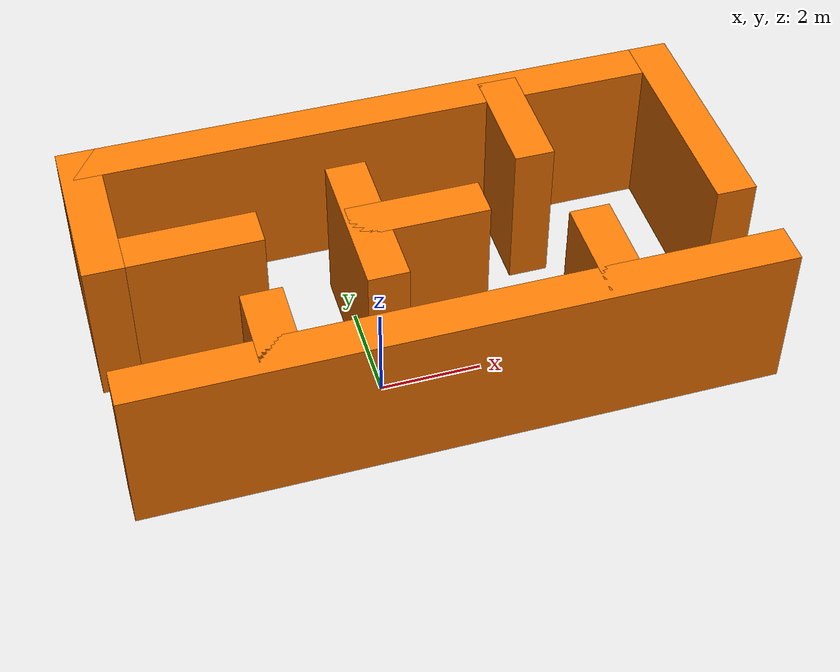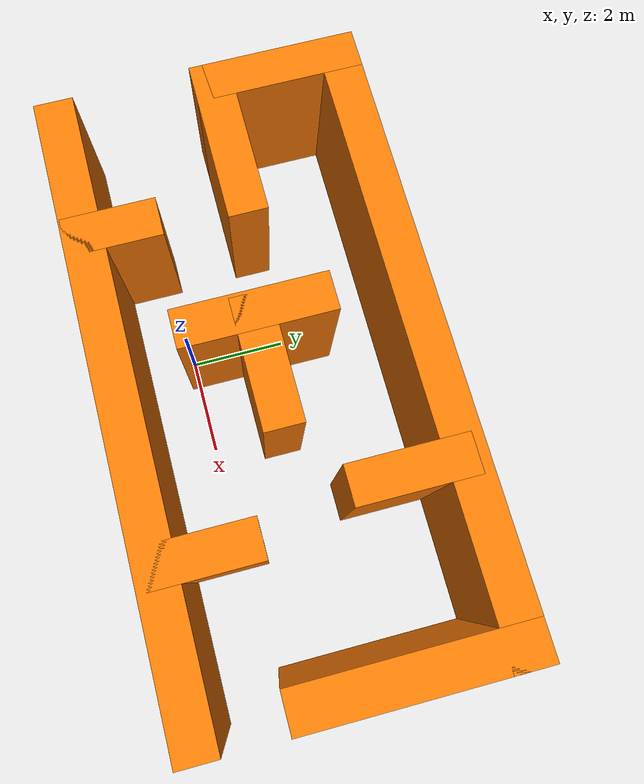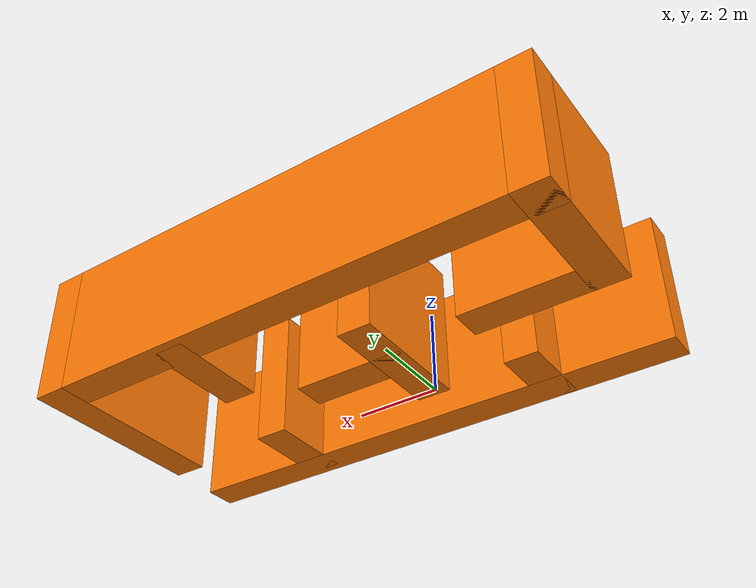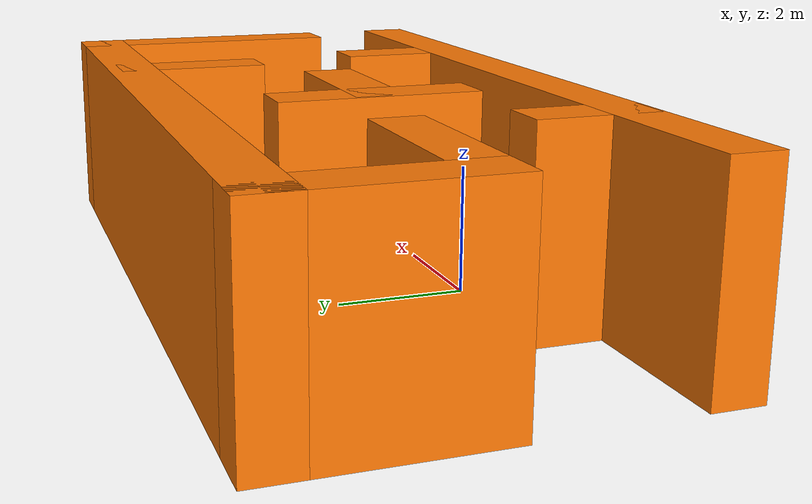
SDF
<?xml version='1.0'?>
<sdf version='1.6'>
  <model name='C_maze'>
    <pose frame=''>1.16 1.50505 0 0 -0 0</pose>
    <link name='Wall_0'>
      <collision name='Wall_0_Collision'>
        <geometry>
          <box>
            <size>12.65 0.8 3.2</size>
          </box>
        </geometry>
        <pose frame=''>0 0 1.6 0 -0 0</pose>
      </collision>
      <visual name='Wall_0_Visual'>
        <pose frame=''>0 0 1.6 0 -0 0</pose>
        <geometry>
          <box>
            <size>12.65 0.8 3.2</size>
          </box>
        </geometry>
        <material>
          <script>
            <uri>file://media/materials/scripts/gazebo.material</uri>
            <name>Gazebo/Grey</name>
          </script>
          <ambient>0.996078 0.47451 0.0196078 1</ambient>
        </material>
        <meta>
          <layer>0</layer>
        </meta>
      </visual>
      <pose frame=''>0.035 -2.92505 0 0 -0 0</pose>
    </link>
    <link name='Wall_11'>
      <collision name='Wall_11_Collision'>
        <geometry>
          <box>
            <size>1.90044 0.8 3.2</size>
          </box>
        </geometry>
        <pose frame=''>0 0 1.6 0 -0 0</pose>
      </collision>
      <visual name='Wall_11_Visual'>
        <pose frame=''>0 0 1.6 0 -0 0</pose>
        <geometry>
          <box>
            <size>1.90044 0.8 3.2</size>
          </box>
        </geometry>
        <material>
          <script>
            <uri>file://media/materials/scripts/gazebo.material</uri>
            <name>Gazebo/Grey</name>
          </script>
          <ambient>0.996078 0.47451 0.0196078 1</ambient>
        </material>
        <meta>
          <layer>0</layer>
        </meta>
      </visual>
      <pose frame=''>-3.325 -2.34205 0 0 -0 1.5708</pose>
    </link>
    <link name='Wall_13'>
      <collision name='Wall_13_Collision'>
        <geometry>
          <box>
            <size>3.15032 0.8 3.2</size>
          </box>
        </geometry>
        <pose frame=''>0 0 1.6 0 -0 0</pose>
      </collision>
      <visual name='Wall_13_Visual'>
        <pose frame=''>0 0 1.6 0 -0 0</pose>
        <geometry>
          <box>
            <size>3.15032 0.8 3.2</size>
          </box>
        </geometry>
        <material>
          <script>
            <uri>file://media/materials/scripts/gazebo.material</uri>
            <name>Gazebo/Grey</name>
          </script>
          <ambient>0.996078 0.47451 0.0196078 1</ambient>
        </material>
        <meta>
          <layer>0</layer>
        </meta>
      </visual>
      <pose frame=''>-1.017 -0.096053 0 0 -0 -1.5708</pose>
    </link>
    <link name='Wall_15'>
      <collision name='Wall_15_Collision'>
        <geometry>
          <box>
            <size>2.65022 0.8 3.2</size>
          </box>
        </geometry>
        <pose frame=''>0 0 1.6 0 -0 0</pose>
      </collision>
      <visual name='Wall_15_Visual'>
        <pose frame=''>0 0 1.6 0 -0 0</pose>
        <geometry>
          <box>
            <size>2.65022 0.8 3.2</size>
          </box>
        </geometry>
        <material>
          <script>
            <uri>file://media/materials/scripts/gazebo.material</uri>
            <name>Gazebo/Grey</name>
          </script>
          <ambient>0.996078 0.47451 0.0196078 1</ambient>
        </material>
        <meta>
          <layer>0</layer>
        </meta>
      </visual>
      <pose frame=''>-0.022 -0.111053 0 0 -0 0</pose>
    </link>
    <link name='Wall_17'>
      <collision name='Wall_17_Collision'>
        <geometry>
          <box>
            <size>2.40025 0.8 3.2</size>
          </box>
        </geometry>
        <pose frame=''>0 0 1.6 0 -0 0</pose>
      </collision>
      <visual name='Wall_17_Visual'>
        <pose frame=''>0 0 1.6 0 -0 0</pose>
        <geometry>
          <box>
            <size>2.40025 0.8 3.2</size>
          </box>
        </geometry>
        <material>
          <script>
            <uri>file://media/materials/scripts/gazebo.material</uri>
            <name>Gazebo/Grey</name>
          </script>
          <ambient>0.996078 0.47451 0.0196078 1</ambient>
        </material>
        <meta>
          <layer>0</layer>
        </meta>
      </visual>
      <pose frame=''>2.604 1.92295 0 0 -0 -1.5708</pose>
    </link>
    <link name='Wall_19'>
      <collision name='Wall_19_Collision'>
        <geometry>
          <box>
            <size>2.14985 0.8 3.2</size>
          </box>
        </geometry>
        <pose frame=''>0 0 1.6 0 -0 0</pose>
      </collision>
      <visual name='Wall_19_Visual'>
        <pose frame=''>0 0 1.6 0 -0 0</pose>
        <geometry>
          <box>
            <size>2.14985 0.8 3.2</size>
          </box>
        </geometry>
        <material>
          <script>
            <uri>file://media/materials/scripts/gazebo.material</uri>
            <name>Gazebo/Grey</name>
          </script>
          <ambient>0.996078 0.47451 0.0196078 1</ambient>
        </material>
        <meta>
          <layer>0</layer>
        </meta>
      </visual>
      <pose frame=''>3.093 -2.05905 0 0 -0 1.5708</pose>
    </link>
    <link name='Wall_2'>
      <collision name='Wall_2_Collision'>
        <geometry>
          <box>
            <size>12.7201 0.8 3.2</size>
          </box>
        </geometry>
        <pose frame=''>0 0 1.6 0 -0 0</pose>
      </collision>
      <visual name='Wall_2_Visual'>
        <pose frame=''>0 0 1.6 0 -0 0</pose>
        <geometry>
          <box>
            <size>12.7201 0.8 3.2</size>
          </box>
        </geometry>
        <material>
          <script>
            <uri>file://media/materials/scripts/gazebo.material</uri>
            <name>Gazebo/Grey</name>
          </script>
          <ambient>0.996078 0.47451 0.0196078 1</ambient>
        </material>
        <meta>
          <layer>0</layer>
        </meta>
      </visual>
      <pose frame=''>0 2.92495 0 0 -0 3.14159</pose>
    </link>
    <link name='Wall_22'>
      <collision name='Wall_22_Collision'>
        <geometry>
          <box>
            <size>4.65 0.8 3.2</size>
          </box>
        </geometry>
        <pose frame=''>0 0 1.6 0 -0 0</pose>
      </collision>
      <visual name='Wall_22_Visual'>
        <pose frame=''>0 0 1.6 0 -0 0</pose>
        <geometry>
          <box>
            <size>4.65 0.8 3.2</size>
          </box>
        </geometry>
        <material>
          <script>
            <uri>file://media/materials/scripts/gazebo.material</uri>
            <name>Gazebo/Grey</name>
          </script>
          <ambient>0.996078 0.47451 0.0196078 1</ambient>
        </material>
        <meta>
          <layer>0</layer>
        </meta>
      </visual>
      <pose frame=''>5.96 0.999947 0 0 -0 -1.5708</pose>
    </link>
    <link name='Wall_7'>
      <collision name='Wall_7_Collision'>
        <geometry>
          <box>
            <size>3.43521 0.8 3.2</size>
          </box>
        </geometry>
        <pose frame=''>0 0 1.6 0 -0 0</pose>
      </collision>
      <visual name='Wall_7_Visual'>
        <pose frame=''>0 0 1.6 0 -0 0</pose>
        <geometry>
          <box>
            <size>3.43521 0.8 3.2</size>
          </box>
        </geometry>
        <material>
          <script>
            <uri>file://media/materials/scripts/gazebo.material</uri>
            <name>Gazebo/Grey</name>
          </script>
          <ambient>0.996078 0.47451 0.0196078 1</ambient>
        </material>
        <meta>
          <layer>0</layer>
        </meta>
      </visual>
      <pose frame=''>-5.96 1.60745 0 0 -0 -1.5708</pose>
    </link>
    <link name='Wall_9'>
      <collision name='Wall_9_Collision'>
        <geometry>
          <box>
            <size>3.4 0.8 3.2</size>
          </box>
        </geometry>
        <pose frame=''>0 0 1.6 0 -0 0</pose>
      </collision>
      <visual name='Wall_9_Visual'>
        <pose frame=''>0 0 1.6 0 -0 0</pose>
        <geometry>
          <box>
            <size>3.4 0.8 3.2</size>
          </box>
        </geometry>
        <material>
          <script>
            <uri>file://media/materials/scripts/gazebo.material</uri>
            <name>Gazebo/Grey</name>
          </script>
          <ambient>0.996078 0.47451 0.0196078 1</ambient>
        </material>
        <meta>
          <layer>0</layer>
        </meta>
      </visual>
      <pose frame=''>-4.66 0.289947 0 0 -0 0</pose>
    </link>
    <static>1</static>
  </model>
</sdf>
